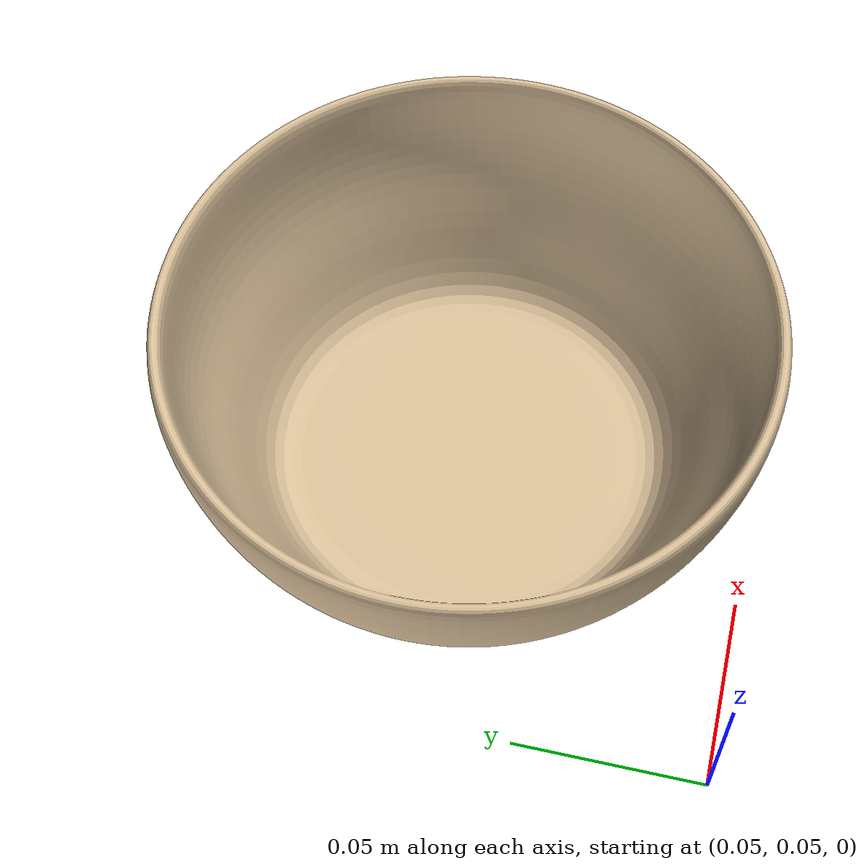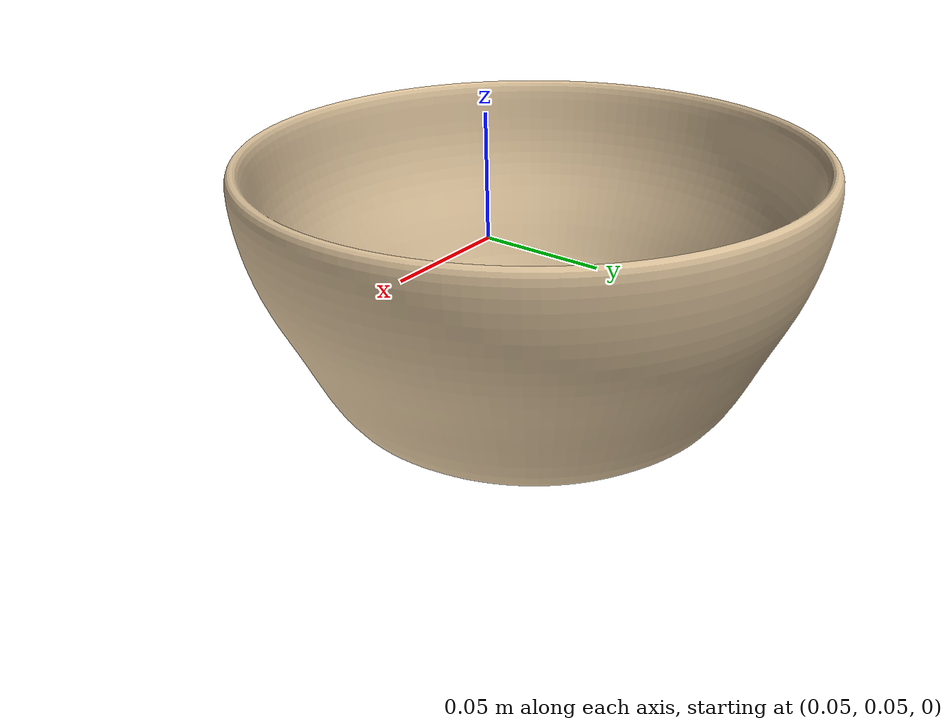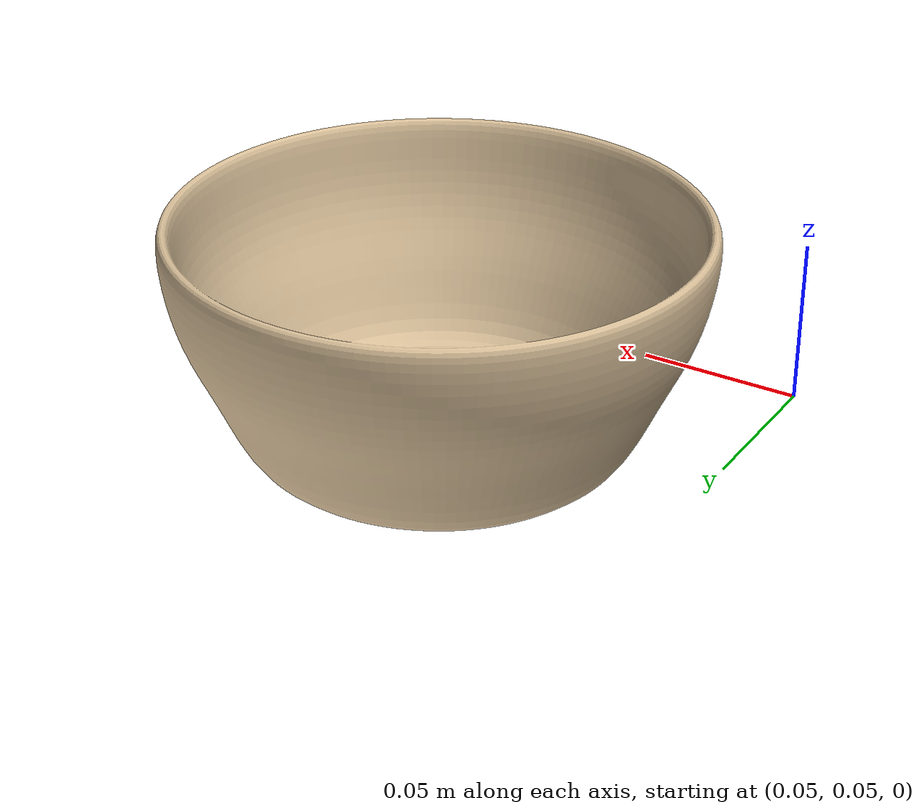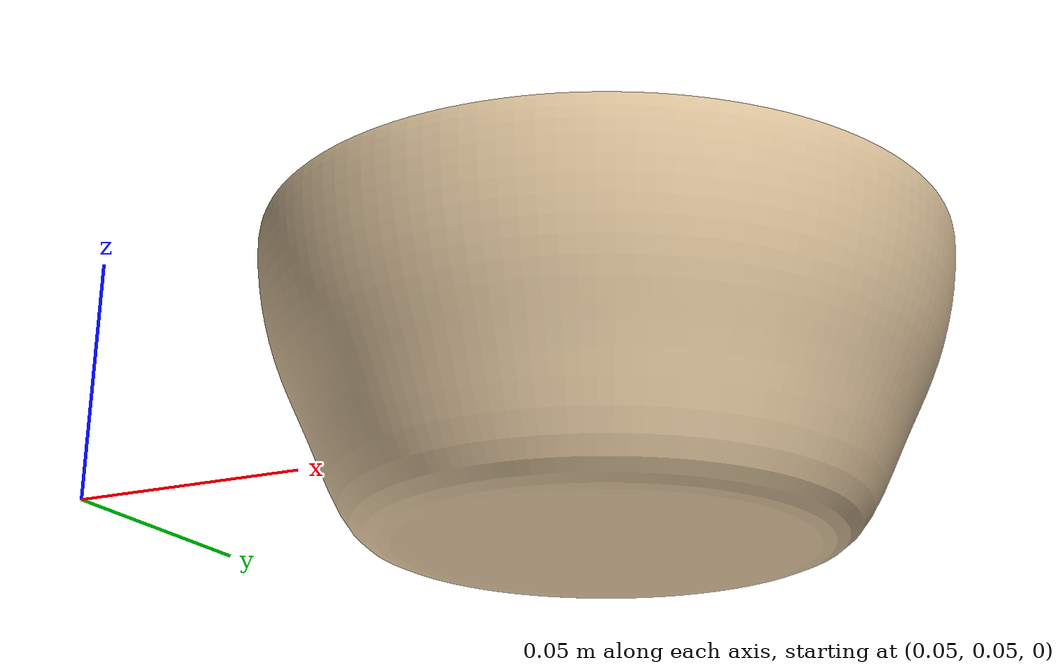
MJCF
<mujoco model="pnp_bowl">
    <compiler angle="degree" coordinate="local" />
    <option timestep="0.01" gravity="0 0 -9.81"/>

    <asset>
        <mesh name="bowl_vis" file="visual/bowl.stl" scale="0.001 0.001 0.001" />
        <mesh name="bowl_mesh" file="collision/bowl.stl" scale="0.001 0.001 0.001" />
        <material name="mat" rgba="0.85 0.75 0.6 1" specular="0.0" shininess="0.0"/>
    </asset>

    <worldbody>
        <body>
            <body name="object" pos="0 0 0">
                <geom solimp="0.998 0.998 0.001"
                      solref="0.001 1"
                      density="100"
                      friction="0.6 0.3 0.1"
                      type="mesh"
                      mesh="bowl_vis"
                      conaffinity="0"
                      contype="0"
                      group="1"
                      material="mat" />
                <geom name="bowl_geom"
                      type="mesh"
                      mesh="bowl_mesh"
                      rgba="0.85 0.75 0.6 1"
                      mass="0.4"
                      group="0" />
            </body>

            <site rgba="0 0 0 0"
                  size="0.005"
                  pos="1.8e-09 0.0001579002 -0.03245274"
                  name="bottom_site"/>
            <site rgba="0 0 0 0"
                  size="0.005"
                  pos="1.8e-09 0.0001579002 0.03305049"
                  name="top_site"/>
            <site rgba="0 0 0 0"
                  size="0.005"
                  pos="0.0589176144 0.0575673768 0.000298875"
                  name="horizontal_radius_site"/>
        </body>
    </worldbody>
</mujoco>
